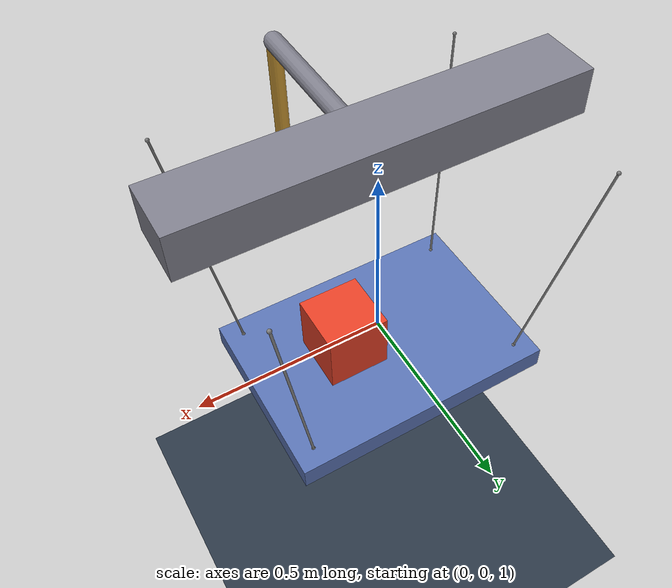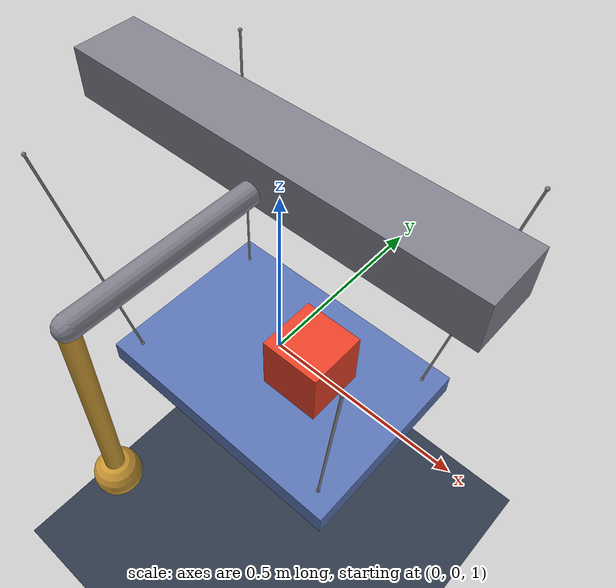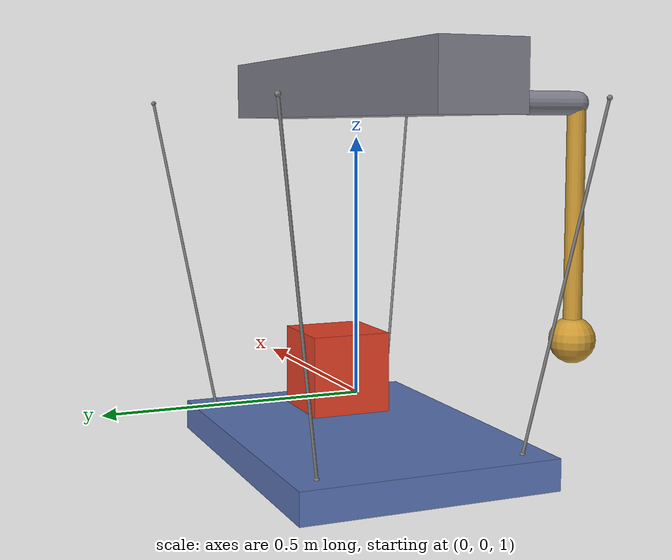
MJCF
<mujoco model="suspension_platform">
  <compiler angle="radian"/>
  <option timestep="0.0005" integrator="Euler" iterations="1000" tolerance="1e-6" gravity="0 0 -9.81">
    <flag contact="enable" equality="enable" limit="enable" frictionloss="disable"/>
  </option>
  <asset>
    <texture name="floor_grid" type="2d" builtin="checker" rgb1="0.12 0.15 0.20" rgb2="0.22 0.28 0.35" width="512" height="512"/>
    <material name="floor_material" texture="floor_grid" texrepeat="8 8" reflectance="0.1"/>
  </asset>
  <worldbody>
    <light directional="true" pos="0 -2 5" dir="0 0.3 -1" diffuse="0.9 0.9 0.9" specular="0.3 0.3 0.3"/>

    <geom material="floor_material" name="floor" type="plane" size="5 5 0.1" pos="0 0 0" condim="1" priority="1" contype="1" conaffinity="0"/>
    <body name="carrier" pos="0 0 1.6" mocap="true">
      <geom name="carrier_geom" type="box" size="0.5 0.08 0.06" rgba="0.5 0.5 0.55 1" mass="0.5" contype="0" conaffinity="0"/>
      <site name="c0" pos="-0.4 0.3 -0.03"/>
      <site name="c1" pos="0.4 0.3 -0.03"/>
      <site name="c2" pos="-0.4 -0.3 -0.03"/>
      <site name="c3" pos="0.4 -0.3 -0.03"/>
      <geom name="strut_mount" type="capsule" fromto="0 0 -0.03 0 -0.5 -0.03" size="0.025" mass="0" contype="0" conaffinity="0" rgba="0.5 0.5 0.55 1"/>
      <body name="strut" pos="0 -0.5 -0.03">
        <joint name="swivel" type="ball" limited="true" range="0 0.2788" solreflimit="0.001 1" solimplimit="0.999 0.9999 0.0001"/>
        <geom name="strut_geom" type="capsule" size="0.02 0.25" pos="0 0 -0.25" rgba="0.8 0.6 0.2 1" mass="0.2" contype="0" conaffinity="0"/>
        <geom name="bob_geom" type="sphere" size="0.05" pos="0 0 -0.5" rgba="0.8 0.6 0.2 1" mass="0.3" contype="0" conaffinity="0"/>
      </body>
    </body>
    <body name="platform" pos="0 0 0.9">
      <freejoint name="platform_free"/>
      <geom name="platform_geom" type="box" size="0.35 0.25 0.03" rgba="0.35 0.45 0.7 1" mass="0.8" friction="1.2 0.05 0.02" contype="1" conaffinity="0" condim="3"/>
      <site name="p0" pos="-0.3 0.2 0.03"/>
      <site name="p1" pos="0.3 0.2 0.03"/>
      <site name="p2" pos="-0.3 -0.2 0.03"/>
      <site name="p3" pos="0.3 -0.2 0.03"/>
    </body>
    <body name="cargo" pos="0.1 0 1.03">
      <freejoint name="cargo_free"/>
      <geom name="cargo_geom" type="box" size="0.08 0.08 0.08" rgba="0.9 0.25 0.15 1" mass="0.4" friction="1.2 0.05 0.02" contype="1" conaffinity="0" condim="3"/>
    </body>
  </worldbody>
  <contact>
    <pair geom1="cargo_geom" geom2="platform_geom"/>
    <pair geom1="cargo_geom" geom2="floor" condim="1"/>
  </contact>
  <tendon>
    <spatial name="cable0" stiffness="200" damping="8" springlength="0.62 0.62">
      <site site="c0"/><site site="p0"/>
    </spatial>
    <spatial name="cable1" stiffness="200" damping="8" springlength="0.62 0.62">
      <site site="c1"/><site site="p1"/>
    </spatial>
    <spatial name="cable2" stiffness="200" damping="8" springlength="0.62 0.62">
      <site site="c2"/><site site="p2"/>
    </spatial>
    <spatial name="cable3" stiffness="200" damping="8" springlength="0.62 0.62" limited="true" range="0 0.6578" solreflimit="0.001 1" solimplimit="0.999 0.9999 0.0001">
      <site site="c3"/><site site="p3"/>
    </spatial>
  </tendon>
  <equality>
    <tendon tendon1="cable0" tendon2="cable1" polycoef="0 1 0 0 0"/>
  </equality>
  <keyframe>
    <key name="start" qpos="1 0 0 0 0 0 0.9 1 0 0 0 0.1 0 1.03 1 0 0 0" mpos="0 0 1.6" mquat="1 0 0 0"/>
  </keyframe>
</mujoco>
